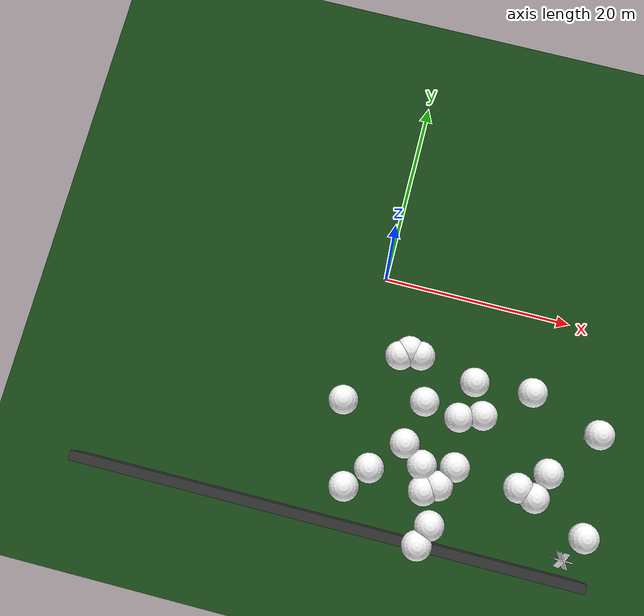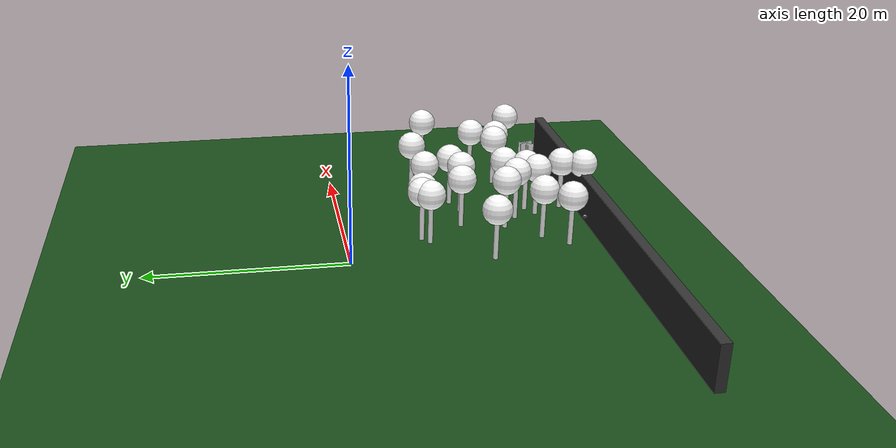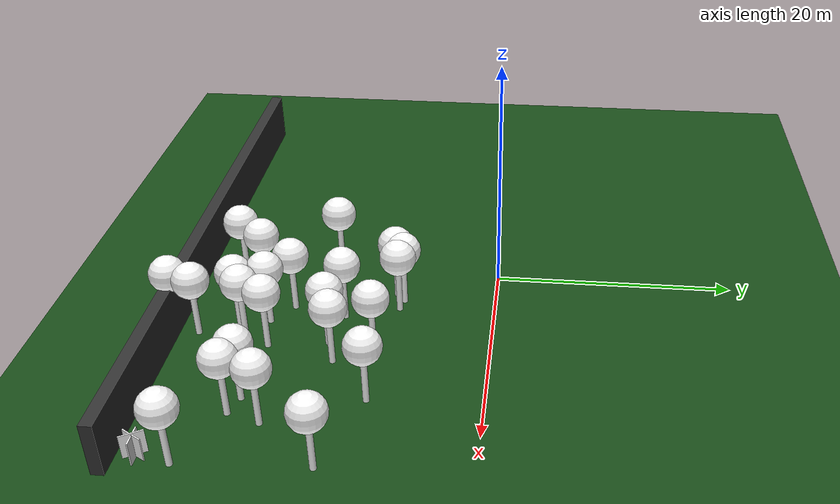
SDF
<sdf version="1.8">
 <world name="forest_world">
  <model name="fire_3">
   <pose>23.95 -23.95 1.00 0 0 0.00</pose>
   <static>true</static>
   <link name="fire_link">
    <visual name="fire_3_fire_main_0">
     <geometry><box><size>1.80 0.10 2.00</size></box></geometry>
     <material>
      <ambient>0.7 0.35 0.0 1</ambient>
      <diffuse>1 1 1 1</diffuse>
      <specular>0 0 0 1</specular>
      <emissive>0 0 0 1</emissive>
      <pbr>
       <metal><albedo_map>textures/fire.png</albedo_map><metalness>0.0</metalness><roughness>0.6</roughness></metal>
      </pbr>
     </material>
     <transparency>0.0</transparency>
     <cast_shadows>false</cast_shadows>
    </visual>
    <visual name="fire_3_fire_60_1">
     <pose>0.00 0.00 0.10 0 0 1.05</pose>
     <geometry><box><size>1.80 0.10 2.00</size></box></geometry>
     <material>
      <ambient>0.7 0.35 0.0 1</ambient>
      <diffuse>1 1 1 1</diffuse>
      <specular>0 0 0 1</specular>
      <emissive>0 0 0 1</emissive>
      <pbr>
       <metal><albedo_map>textures/fire.png</albedo_map><metalness>0.0</metalness><roughness>0.6</roughness></metal>
      </pbr>
     </material>
     <transparency>0.0</transparency>
     <cast_shadows>false</cast_shadows>
    </visual>
    <visual name="fire_3_fire_120_2">
     <pose>0.00 0.00 0.20 0 0 2.09</pose>
     <geometry><box><size>1.80 0.10 2.00</size></box></geometry>
     <material>
      <ambient>0.7 0.35 0.0 1</ambient>
      <diffuse>1 1 1 1</diffuse>
      <specular>0 0 0 1</specular>
      <emissive>0 0 0 1</emissive>
      <pbr>
       <metal><albedo_map>textures/fire.png</albedo_map><metalness>0.0</metalness><roughness>0.6</roughness></metal>
      </pbr>
     </material>
     <transparency>0.0</transparency>
     <cast_shadows>false</cast_shadows>
    </visual>
    <light type="point" name="fire_3_light_0">
     <pose>0.40 0.00 0.50 0 0 0</pose>
     <diffuse>1.0 0.7 0.3 1</diffuse>
     <specular>1.0 0.8 0.3 1</specular>
     <intensity>2</intensity>
     <attenuation>
      <range>2</range>
      <constant>0.1</constant>
      <linear>0.05</linear>
      <quadratic>0.02</quadratic>
     </attenuation>
     <cast_shadows>false</cast_shadows>
    </light>
    <light type="point" name="fire_3_light_1">
     <pose>-0.20 0.35 0.50 0 0 0</pose>
     <diffuse>1.0 0.7 0.3 1</diffuse>
     <specular>1.0 0.8 0.3 1</specular>
     <intensity>2</intensity>
     <attenuation>
      <range>2</range>
      <constant>0.1</constant>
      <linear>0.05</linear>
      <quadratic>0.02</quadratic>
     </attenuation>
     <cast_shadows>false</cast_shadows>
    </light>
    <light type="point" name="fire_3_light_2">
     <pose>-0.20 -0.35 0.50 0 0 0</pose>
     <diffuse>1.0 0.7 0.3 1</diffuse>
     <specular>1.0 0.8 0.3 1</specular>
     <intensity>2</intensity>
     <attenuation>
      <range>2</range>
      <constant>0.1</constant>
      <linear>0.05</linear>
      <quadratic>0.02</quadratic>
     </attenuation>
     <cast_shadows>false</cast_shadows>
    </light>
   </link>
   <plugin filename="libignition-gazebo-pose-publisher-system.so" name="ignition::gazebo::systems::PosePublisher">
    <frame_id>world</frame_id>
    <publish_link_pose>true</publish_link_pose>
    <use_pose_vector_msg>true</use_pose_vector_msg>
    <static_publisher>true</static_publisher>
    <static_update_frequency>1</static_update_frequency>
   </plugin>
  </model>
  <model name="tree_simple478">
   <static>1</static>
   <link name="link">
    <pose>0 0 0.1 0 -0 0</pose>
    <collision name="collision_trunk">
     <pose>0 0 2 0 -0 0</pose>
     <geometry><cylinder><radius>0.25</radius><length>4</length></cylinder></geometry>
    </collision>
    <collision name="collision_treetop">
     <pose>0 0 5.2 0 -0 0</pose>
     <geometry><sphere><radius>1.5</radius></sphere></geometry>
    </collision>
    <visual name="trunk">
     <pose>0 0 2 0 -0 0</pose>
     <geometry><cylinder><radius>0.25</radius><length>4</length></cylinder></geometry>
     <material>
      <ambient>0.5 0.5 0.5 1</ambient>
      <diffuse>1.0 1.0 1.0 1</diffuse>
      <specular>0.0 0.0 0.0 1</specular>
      <pbr>
       <metal>
        <albedo_map>../worlds/textures/tree_simple_trunk.jpg</albedo_map>
        <metalness>0.0</metalness>
        <roughness>0.8</roughness>
       </metal>
      </pbr>
     </material>
    </visual>
    <visual name="treetop">
     <pose>0 0 5.2 0 -0 0</pose>
     <geometry><sphere><radius>1.5</radius></sphere></geometry>
     <material>
      <ambient>0.5 0.5 0.5 1</ambient>
      <diffuse>1.0 1.0 1.0 1</diffuse>
      <specular>0.0 0.0 0.0 1</specular>
      <pbr>
       <metal>
        <albedo_map>../worlds/textures/tree_simple_treetop.jpg</albedo_map>
        <metalness>0.0</metalness>
        <roughness>0.9</roughness>
       </metal>
      </pbr>
     </material>
    </visual>
   </link>
   <pose>6.74093075138 -12.3162984353 0 0 -0 0</pose>
  </model>
  <model name="tree_simple472">
   <static>1</static>
   <link name="link">
    <pose>0 0 0.1 0 -0 0</pose>
    <collision name="collision_trunk">
     <pose>0 0 2 0 -0 0</pose>
     <geometry><cylinder><radius>0.25</radius><length>4</length></cylinder></geometry>
    </collision>
    <collision name="collision_treetop">
     <pose>0 0 5.2 0 -0 0</pose>
     <geometry><sphere><radius>1.5</radius></sphere></geometry>
    </collision>
    <visual name="trunk">
     <pose>0 0 2 0 -0 0</pose>
     <geometry><cylinder><radius>0.25</radius><length>4</length></cylinder></geometry>
     <material>
      <ambient>0.5 0.5 0.5 1</ambient>
      <diffuse>1.0 1.0 1.0 1</diffuse>
      <specular>0.0 0.0 0.0 1</specular>
      <pbr>
       <metal>
        <albedo_map>../worlds/textures/tree_simple_trunk.jpg</albedo_map>
        <metalness>0.0</metalness>
        <roughness>0.8</roughness>
       </metal>
      </pbr>
     </material>
    </visual>
    <visual name="treetop">
     <pose>0 0 5.2 0 -0 0</pose>
     <geometry><sphere><radius>1.5</radius></sphere></geometry>
     <material>
      <ambient>0.5 0.5 0.5 1</ambient>
      <diffuse>1.0 1.0 1.0 1</diffuse>
      <specular>0.0 0.0 0.0 1</specular>
      <pbr>
       <metal>
        <albedo_map>../worlds/textures/tree_simple_treetop.jpg</albedo_map>
        <metalness>0.0</metalness>
        <roughness>0.9</roughness>
       </metal>
      </pbr>
     </material>
    </visual>
   </link>
   <pose>9.92228677952 -23.8303447852 0 0 -0 0</pose>
  </model>
  <model name="tree_simple463">
   <static>1</static>
   <link name="link">
    <pose>0 0 0.1 0 -0 0</pose>
    <collision name="collision_trunk">
     <pose>0 0 2 0 -0 0</pose>
     <geometry><cylinder><radius>0.25</radius><length>4</length></cylinder></geometry>
    </collision>
    <collision name="collision_treetop">
     <pose>0 0 5.2 0 -0 0</pose>
     <geometry><sphere><radius>1.5</radius></sphere></geometry>
    </collision>
    <visual name="trunk">
     <pose>0 0 2 0 -0 0</pose>
     <geometry><cylinder><radius>0.25</radius><length>4</length></cylinder></geometry>
     <material>
      <ambient>0.5 0.5 0.5 1</ambient>
      <diffuse>1.0 1.0 1.0 1</diffuse>
      <specular>0.0 0.0 0.0 1</specular>
      <pbr>
       <metal>
        <albedo_map>../worlds/textures/tree_simple_trunk.jpg</albedo_map>
        <metalness>0.0</metalness>
        <roughness>0.8</roughness>
       </metal>
      </pbr>
     </material>
    </visual>
    <visual name="treetop">
     <pose>0 0 5.2 0 -0 0</pose>
     <geometry><sphere><radius>1.5</radius></sphere></geometry>
     <material>
      <ambient>0.5 0.5 0.5 1</ambient>
      <diffuse>1.0 1.0 1.0 1</diffuse>
      <specular>0.0 0.0 0.0 1</specular>
      <pbr>
       <metal>
        <albedo_map>../worlds/textures/tree_simple_treetop.jpg</albedo_map>
        <metalness>0.0</metalness>
        <roughness>0.9</roughness>
       </metal>
      </pbr>
     </material>
    </visual>
   </link>
   <pose>4.14452898467 -7.71733475474 0 0 -0 0</pose>
  </model>
  <model name="tree_simple439">
   <static>1</static>
   <link name="link">
    <pose>0 0 0.1 0 -0 0</pose>
    <collision name="collision_trunk">
     <pose>0 0 2 0 -0 0</pose>
     <geometry><cylinder><radius>0.25</radius><length>4</length></cylinder></geometry>
    </collision>
    <collision name="collision_treetop">
     <pose>0 0 5.2 0 -0 0</pose>
     <geometry><sphere><radius>1.5</radius></sphere></geometry>
    </collision>
    <visual name="trunk">
     <pose>0 0 2 0 -0 0</pose>
     <geometry><cylinder><radius>0.25</radius><length>4</length></cylinder></geometry>
     <material>
      <ambient>0.5 0.5 0.5 1</ambient>
      <diffuse>1.0 1.0 1.0 1</diffuse>
      <specular>0.0 0.0 0.0 1</specular>
      <pbr>
       <metal>
        <albedo_map>../worlds/textures/tree_simple_trunk.jpg</albedo_map>
        <metalness>0.0</metalness>
        <roughness>0.8</roughness>
       </metal>
      </pbr>
     </material>
    </visual>
    <visual name="treetop">
     <pose>0 0 5.2 0 -0 0</pose>
     <geometry><sphere><radius>1.5</radius></sphere></geometry>
     <material>
      <ambient>0.5 0.5 0.5 1</ambient>
      <diffuse>1.0 1.0 1.0 1</diffuse>
      <specular>0.0 0.0 0.0 1</specular>
      <pbr>
       <metal>
        <albedo_map>../worlds/textures/tree_simple_treetop.jpg</albedo_map>
        <metalness>0.0</metalness>
        <roughness>0.9</roughness>
       </metal>
      </pbr>
     </material>
    </visual>
   </link>
   <pose>8.56501316053 -20.7640585998 0 0 -0 0</pose>
  </model>
  <model name="tree_simple428">
   <static>1</static>
   <link name="link">
    <pose>0 0 0.1 0 -0 0</pose>
    <collision name="collision_trunk">
     <pose>0 0 2 0 -0 0</pose>
     <geometry><cylinder><radius>0.25</radius><length>4</length></cylinder></geometry>
    </collision>
    <collision name="collision_treetop">
     <pose>0 0 5.2 0 -0 0</pose>
     <geometry><sphere><radius>1.5</radius></sphere></geometry>
    </collision>
    <visual name="trunk">
     <pose>0 0 2 0 -0 0</pose>
     <geometry><cylinder><radius>0.25</radius><length>4</length></cylinder></geometry>
     <material>
      <ambient>0.5 0.5 0.5 1</ambient>
      <diffuse>1.0 1.0 1.0 1</diffuse>
      <specular>0.0 0.0 0.0 1</specular>
      <pbr>
       <metal>
        <albedo_map>../worlds/textures/tree_simple_trunk.jpg</albedo_map>
        <metalness>0.0</metalness>
        <roughness>0.8</roughness>
       </metal>
      </pbr>
     </material>
    </visual>
    <visual name="treetop">
     <pose>0 0 5.2 0 -0 0</pose>
     <geometry><sphere><radius>1.5</radius></sphere></geometry>
     <material>
      <ambient>0.5 0.5 0.5 1</ambient>
      <diffuse>1.0 1.0 1.0 1</diffuse>
      <specular>0.0 0.0 0.0 1</specular>
      <pbr>
       <metal>
        <albedo_map>../worlds/textures/tree_simple_treetop.jpg</albedo_map>
        <metalness>0.0</metalness>
        <roughness>0.9</roughness>
       </metal>
      </pbr>
     </material>
    </visual>
   </link>
   <pose>9.87663766252 -19.9509422297 0 0 -0 0</pose>
  </model>
  <model name="tree_simple389">
   <static>1</static>
   <link name="link">
    <pose>0 0 0.1 0 -0 0</pose>
    <collision name="collision_trunk">
     <pose>0 0 2 0 -0 0</pose>
     <geometry><cylinder><radius>0.25</radius><length>4</length></cylinder></geometry>
    </collision>
    <collision name="collision_treetop">
     <pose>0 0 5.2 0 -0 0</pose>
     <geometry><sphere><radius>1.5</radius></sphere></geometry>
    </collision>
    <visual name="trunk">
     <pose>0 0 2 0 -0 0</pose>
     <geometry><cylinder><radius>0.25</radius><length>4</length></cylinder></geometry>
     <material>
      <ambient>0.5 0.5 0.5 1</ambient>
      <diffuse>1.0 1.0 1.0 1</diffuse>
      <specular>0.0 0.0 0.0 1</specular>
      <pbr>
       <metal>
        <albedo_map>../worlds/textures/tree_simple_trunk.jpg</albedo_map>
        <metalness>0.0</metalness>
        <roughness>0.8</roughness>
       </metal>
      </pbr>
     </material>
    </visual>
    <visual name="treetop">
     <pose>0 0 5.2 0 -0 0</pose>
     <geometry><sphere><radius>1.5</radius></sphere></geometry>
     <material>
      <ambient>0.5 0.5 0.5 1</ambient>
      <diffuse>1.0 1.0 1.0 1</diffuse>
      <specular>0.0 0.0 0.0 1</specular>
      <pbr>
       <metal>
        <albedo_map>../worlds/textures/tree_simple_treetop.jpg</albedo_map>
        <metalness>0.0</metalness>
        <roughness>0.9</roughness>
       </metal>
      </pbr>
     </material>
    </visual>
   </link>
   <pose>12.5934036343 -12.2598342596 0 0 -0 0</pose>
  </model>
  <model name="tree_simple327">
   <static>1</static>
   <link name="link">
    <pose>0 0 0.1 0 -0 0</pose>
    <collision name="collision_trunk">
     <pose>0 0 2 0 -0 0</pose>
     <geometry><cylinder><radius>0.25</radius><length>4</length></cylinder></geometry>
    </collision>
    <collision name="collision_treetop">
     <pose>0 0 5.2 0 -0 0</pose>
     <geometry><sphere><radius>1.5</radius></sphere></geometry>
    </collision>
    <visual name="trunk">
     <pose>0 0 2 0 -0 0</pose>
     <geometry><cylinder><radius>0.25</radius><length>4</length></cylinder></geometry>
     <material>
      <ambient>0.5 0.5 0.5 1</ambient>
      <diffuse>1.0 1.0 1.0 1</diffuse>
      <specular>0.0 0.0 0.0 1</specular>
      <pbr>
       <metal>
        <albedo_map>../worlds/textures/tree_simple_trunk.jpg</albedo_map>
        <metalness>0.0</metalness>
        <roughness>0.8</roughness>
       </metal>
      </pbr>
     </material>
    </visual>
    <visual name="treetop">
     <pose>0 0 5.2 0 -0 0</pose>
     <geometry><sphere><radius>1.5</radius></sphere></geometry>
     <material>
      <ambient>0.5 0.5 0.5 1</ambient>
      <diffuse>1.0 1.0 1.0 1</diffuse>
      <specular>0.0 0.0 0.0 1</specular>
      <pbr>
       <metal>
        <albedo_map>../worlds/textures/tree_simple_treetop.jpg</albedo_map>
        <metalness>0.0</metalness>
        <roughness>0.9</roughness>
       </metal>
      </pbr>
     </material>
    </visual>
   </link>
   <pose>5.78438571624 -16.7663148306 0 0 -0 0</pose>
  </model>
  <model name="tree_simple317">
   <static>1</static>
   <link name="link">
    <pose>0 0 0.1 0 -0 0</pose>
    <collision name="collision_trunk">
     <pose>0 0 2 0 -0 0</pose>
     <geometry><cylinder><radius>0.25</radius><length>4</length></cylinder></geometry>
    </collision>
    <collision name="collision_treetop">
     <pose>0 0 5.2 0 -0 0</pose>
     <geometry><sphere><radius>1.5</radius></sphere></geometry>
    </collision>
    <visual name="trunk">
     <pose>0 0 2 0 -0 0</pose>
     <geometry><cylinder><radius>0.25</radius><length>4</length></cylinder></geometry>
     <material>
      <ambient>0.5 0.5 0.5 1</ambient>
      <diffuse>1.0 1.0 1.0 1</diffuse>
      <specular>0.0 0.0 0.0 1</specular>
      <pbr>
       <metal>
        <albedo_map>../worlds/textures/tree_simple_trunk.jpg</albedo_map>
        <metalness>0.0</metalness>
        <roughness>0.8</roughness>
       </metal>
      </pbr>
     </material>
    </visual>
    <visual name="treetop">
     <pose>0 0 5.2 0 -0 0</pose>
     <geometry><sphere><radius>1.5</radius></sphere></geometry>
     <material>
      <ambient>0.5 0.5 0.5 1</ambient>
      <diffuse>1.0 1.0 1.0 1</diffuse>
      <specular>0.0 0.0 0.0 1</specular>
      <pbr>
       <metal>
        <albedo_map>../worlds/textures/tree_simple_treetop.jpg</albedo_map>
        <metalness>0.0</metalness>
        <roughness>0.9</roughness>
       </metal>
      </pbr>
     </material>
    </visual>
   </link>
   <pose>1.01183279708 -22.2370296953 0 0 -0 0</pose>
  </model>
  <model name="tree_simple309">
   <static>1</static>
   <link name="link">
    <pose>0 0 0.1 0 -0 0</pose>
    <collision name="collision_trunk">
     <pose>0 0 2 0 -0 0</pose>
     <geometry><cylinder><radius>0.25</radius><length>4</length></cylinder></geometry>
    </collision>
    <collision name="collision_treetop">
     <pose>0 0 5.2 0 -0 0</pose>
     <geometry><sphere><radius>1.5</radius></sphere></geometry>
    </collision>
    <visual name="trunk">
     <pose>0 0 2 0 -0 0</pose>
     <geometry><cylinder><radius>0.25</radius><length>4</length></cylinder></geometry>
     <material>
      <ambient>0.5 0.5 0.5 1</ambient>
      <diffuse>1.0 1.0 1.0 1</diffuse>
      <specular>0.0 0.0 0.0 1</specular>
      <pbr>
       <metal>
        <albedo_map>../worlds/textures/tree_simple_trunk.jpg</albedo_map>
        <metalness>0.0</metalness>
        <roughness>0.8</roughness>
       </metal>
      </pbr>
     </material>
    </visual>
    <visual name="treetop">
     <pose>0 0 5.2 0 -0 0</pose>
     <geometry><sphere><radius>1.5</radius></sphere></geometry>
     <material>
      <ambient>0.5 0.5 0.5 1</ambient>
      <diffuse>1.0 1.0 1.0 1</diffuse>
      <specular>0.0 0.0 0.0 1</specular>
      <pbr>
       <metal>
        <albedo_map>../worlds/textures/tree_simple_treetop.jpg</albedo_map>
        <metalness>0.0</metalness>
        <roughness>0.9</roughness>
       </metal>
      </pbr>
     </material>
    </visual>
   </link>
   <pose>19.1748935323 -18.8000539767 0 0 -0 0</pose>
  </model>
  <model name="tree_simple292">
   <static>1</static>
   <link name="link">
    <pose>0 0 0.1 0 -0 0</pose>
    <collision name="collision_trunk">
     <pose>0 0 2 0 -0 0</pose>
     <geometry><cylinder><radius>0.25</radius><length>4</length></cylinder></geometry>
    </collision>
    <collision name="collision_treetop">
     <pose>0 0 5.2 0 -0 0</pose>
     <geometry><sphere><radius>1.5</radius></sphere></geometry>
    </collision>
    <visual name="trunk">
     <pose>0 0 2 0 -0 0</pose>
     <geometry><cylinder><radius>0.25</radius><length>4</length></cylinder></geometry>
     <material>
      <ambient>0.5 0.5 0.5 1</ambient>
      <diffuse>1.0 1.0 1.0 1</diffuse>
      <specular>0.0 0.0 0.0 1</specular>
      <pbr>
       <metal>
        <albedo_map>../worlds/textures/tree_simple_trunk.jpg</albedo_map>
        <metalness>0.0</metalness>
        <roughness>0.8</roughness>
       </metal>
      </pbr>
     </material>
    </visual>
    <visual name="treetop">
     <pose>0 0 5.2 0 -0 0</pose>
     <geometry><sphere><radius>1.5</radius></sphere></geometry>
     <material>
      <ambient>0.5 0.5 0.5 1</ambient>
      <diffuse>1.0 1.0 1.0 1</diffuse>
      <specular>0.0 0.0 0.0 1</specular>
      <pbr>
       <metal>
        <albedo_map>../worlds/textures/tree_simple_treetop.jpg</albedo_map>
        <metalness>0.0</metalness>
        <roughness>0.9</roughness>
       </metal>
      </pbr>
     </material>
    </visual>
   </link>
   <pose>16.8917664362 -8.8290409333 0 0 -0 0</pose>
  </model>
  <model name="tree_simple211">
   <static>1</static>
   <link name="link">
    <pose>0 0 0.1 0 -0 0</pose>
    <collision name="collision_trunk">
     <pose>0 0 2 0 -0 0</pose>
     <geometry><cylinder><radius>0.25</radius><length>4</length></cylinder></geometry>
    </collision>
    <collision name="collision_treetop">
     <pose>0 0 5.2 0 -0 0</pose>
     <geometry><sphere><radius>1.5</radius></sphere></geometry>
    </collision>
    <visual name="trunk">
     <pose>0 0 2 0 -0 0</pose>
     <geometry><cylinder><radius>0.25</radius><length>4</length></cylinder></geometry>
     <material>
      <ambient>0.5 0.5 0.5 1</ambient>
      <diffuse>1.0 1.0 1.0 1</diffuse>
      <specular>0.0 0.0 0.0 1</specular>
      <pbr>
       <metal>
        <albedo_map>../worlds/textures/tree_simple_trunk.jpg</albedo_map>
        <metalness>0.0</metalness>
        <roughness>0.8</roughness>
       </metal>
      </pbr>
     </material>
    </visual>
    <visual name="treetop">
     <pose>0 0 5.2 0 -0 0</pose>
     <geometry><sphere><radius>1.5</radius></sphere></geometry>
     <material>
      <ambient>0.5 0.5 0.5 1</ambient>
      <diffuse>1.0 1.0 1.0 1</diffuse>
      <specular>0.0 0.0 0.0 1</specular>
      <pbr>
       <metal>
        <albedo_map>../worlds/textures/tree_simple_treetop.jpg</albedo_map>
        <metalness>0.0</metalness>
        <roughness>0.9</roughness>
       </metal>
      </pbr>
     </material>
    </visual>
   </link>
   <pose>24.1088627432 -11.2741546154 0 0 -0 0</pose>
  </model>
  <model name="tree_simple195">
   <static>1</static>
   <link name="link">
    <pose>0 0 0.1 0 -0 0</pose>
    <collision name="collision_trunk">
     <pose>0 0 2 0 -0 0</pose>
     <geometry><cylinder><radius>0.25</radius><length>4</length></cylinder></geometry>
    </collision>
    <collision name="collision_treetop">
     <pose>0 0 5.2 0 -0 0</pose>
     <geometry><sphere><radius>1.5</radius></sphere></geometry>
    </collision>
    <visual name="trunk">
     <pose>0 0 2 0 -0 0</pose>
     <geometry><cylinder><radius>0.25</radius><length>4</length></cylinder></geometry>
     <material>
      <ambient>0.5 0.5 0.5 1</ambient>
      <diffuse>1.0 1.0 1.0 1</diffuse>
      <specular>0.0 0.0 0.0 1</specular>
      <pbr>
       <metal>
        <albedo_map>../worlds/textures/tree_simple_trunk.jpg</albedo_map>
        <metalness>0.0</metalness>
        <roughness>0.8</roughness>
       </metal>
      </pbr>
     </material>
    </visual>
    <visual name="treetop">
     <pose>0 0 5.2 0 -0 0</pose>
     <geometry><sphere><radius>1.5</radius></sphere></geometry>
     <material>
      <ambient>0.5 0.5 0.5 1</ambient>
      <diffuse>1.0 1.0 1.0 1</diffuse>
      <specular>0.0 0.0 0.0 1</specular>
      <pbr>
       <metal>
        <albedo_map>../worlds/textures/tree_simple_treetop.jpg</albedo_map>
        <metalness>0.0</metalness>
        <roughness>0.9</roughness>
       </metal>
      </pbr>
     </material>
    </visual>
   </link>
   <pose>2.97634626893 -19.931363898 0 0 -0 0</pose>
  </model>
  <model name="tree_simple191">
   <static>1</static>
   <link name="link">
    <pose>0 0 0.1 0 -0 0</pose>
    <collision name="collision_trunk">
     <pose>0 0 2 0 -0 0</pose>
     <geometry><cylinder><radius>0.25</radius><length>4</length></cylinder></geometry>
    </collision>
    <collision name="collision_treetop">
     <pose>0 0 5.2 0 -0 0</pose>
     <geometry><sphere><radius>1.5</radius></sphere></geometry>
    </collision>
    <visual name="trunk">
     <pose>0 0 2 0 -0 0</pose>
     <geometry><cylinder><radius>0.25</radius><length>4</length></cylinder></geometry>
     <material>
      <ambient>0.5 0.5 0.5 1</ambient>
      <diffuse>1.0 1.0 1.0 1</diffuse>
      <specular>0.0 0.0 0.0 1</specular>
      <pbr>
       <metal>
        <albedo_map>../worlds/textures/tree_simple_trunk.jpg</albedo_map>
        <metalness>0.0</metalness>
        <roughness>0.8</roughness>
       </metal>
      </pbr>
     </material>
    </visual>
    <visual name="treetop">
     <pose>0 0 5.2 0 -0 0</pose>
     <geometry><sphere><radius>1.5</radius></sphere></geometry>
     <material>
      <ambient>0.5 0.5 0.5 1</ambient>
      <diffuse>1.0 1.0 1.0 1</diffuse>
      <specular>0.0 0.0 0.0 1</specular>
      <pbr>
       <metal>
        <albedo_map>../worlds/textures/tree_simple_treetop.jpg</albedo_map>
        <metalness>0.0</metalness>
        <roughness>0.9</roughness>
       </metal>
      </pbr>
     </material>
    </visual>
   </link>
   <pose>7.88783183775 -18.3803184039 0 0 -0 0</pose>
  </model>
  <model name="tree_simple157">
   <static>1</static>
   <link name="link">
    <pose>0 0 0.1 0 -0 0</pose>
    <collision name="collision_trunk">
     <pose>0 0 2 0 -0 0</pose>
     <geometry><cylinder><radius>0.25</radius><length>4</length></cylinder></geometry>
    </collision>
    <collision name="collision_treetop">
     <pose>0 0 5.2 0 -0 0</pose>
     <geometry><sphere><radius>1.5</radius></sphere></geometry>
    </collision>
    <visual name="trunk">
     <pose>0 0 2 0 -0 0</pose>
     <geometry><cylinder><radius>0.25</radius><length>4</length></cylinder></geometry>
     <material>
      <ambient>0.5 0.5 0.5 1</ambient>
      <diffuse>1.0 1.0 1.0 1</diffuse>
      <specular>0.0 0.0 0.0 1</specular>
      <pbr>
       <metal>
        <albedo_map>../worlds/textures/tree_simple_trunk.jpg</albedo_map>
        <metalness>0.0</metalness>
        <roughness>0.8</roughness>
       </metal>
      </pbr>
     </material>
    </visual>
    <visual name="treetop">
     <pose>0 0 5.2 0 -0 0</pose>
     <geometry><sphere><radius>1.5</radius></sphere></geometry>
     <material>
      <ambient>0.5 0.5 0.5 1</ambient>
      <diffuse>1.0 1.0 1.0 1</diffuse>
      <specular>0.0 0.0 0.0 1</specular>
      <pbr>
       <metal>
        <albedo_map>../worlds/textures/tree_simple_treetop.jpg</albedo_map>
        <metalness>0.0</metalness>
        <roughness>0.9</roughness>
       </metal>
      </pbr>
     </material>
    </visual>
   </link>
   <pose>17.4643259264 -18.2232751505 0 0 -0 0</pose>
  </model>
  <model name="tree_simple156">
   <static>1</static>
   <link name="link">
    <pose>0 0 0.1 0 -0 0</pose>
    <collision name="collision_trunk">
     <pose>0 0 2 0 -0 0</pose>
     <geometry><cylinder><radius>0.25</radius><length>4</length></cylinder></geometry>
    </collision>
    <collision name="collision_treetop">
     <pose>0 0 5.2 0 -0 0</pose>
     <geometry><sphere><radius>1.5</radius></sphere></geometry>
    </collision>
    <visual name="trunk">
     <pose>0 0 2 0 -0 0</pose>
     <geometry><cylinder><radius>0.25</radius><length>4</length></cylinder></geometry>
     <material>
      <ambient>0.5 0.5 0.5 1</ambient>
      <diffuse>1.0 1.0 1.0 1</diffuse>
      <specular>0.0 0.0 0.0 1</specular>
      <pbr>
       <metal>
        <albedo_map>../worlds/textures/tree_simple_trunk.jpg</albedo_map>
        <metalness>0.0</metalness>
        <roughness>0.8</roughness>
       </metal>
      </pbr>
     </material>
    </visual>
    <visual name="treetop">
     <pose>0 0 5.2 0 -0 0</pose>
     <geometry><sphere><radius>1.5</radius></sphere></geometry>
     <material>
      <ambient>0.5 0.5 0.5 1</ambient>
      <diffuse>1.0 1.0 1.0 1</diffuse>
      <specular>0.0 0.0 0.0 1</specular>
      <pbr>
       <metal>
        <albedo_map>../worlds/textures/tree_simple_treetop.jpg</albedo_map>
        <metalness>0.0</metalness>
        <roughness>0.9</roughness>
       </metal>
      </pbr>
     </material>
    </visual>
   </link>
   <pose>20.0356149828 -16.1600287231 0 0 -0 0</pose>
  </model>
  <model name="tree_simple154">
   <static>1</static>
   <link name="link">
    <pose>0 0 0.1 0 -0 0</pose>
    <collision name="collision_trunk">
     <pose>0 0 2 0 -0 0</pose>
     <geometry><cylinder><radius>0.25</radius><length>4</length></cylinder></geometry>
    </collision>
    <collision name="collision_treetop">
     <pose>0 0 5.2 0 -0 0</pose>
     <geometry><sphere><radius>1.5</radius></sphere></geometry>
    </collision>
    <visual name="trunk">
     <pose>0 0 2 0 -0 0</pose>
     <geometry><cylinder><radius>0.25</radius><length>4</length></cylinder></geometry>
     <material>
      <ambient>0.5 0.5 0.5 1</ambient>
      <diffuse>1.0 1.0 1.0 1</diffuse>
      <specular>0.0 0.0 0.0 1</specular>
      <pbr>
       <metal>
        <albedo_map>../worlds/textures/tree_simple_trunk.jpg</albedo_map>
        <metalness>0.0</metalness>
        <roughness>0.8</roughness>
       </metal>
      </pbr>
     </material>
    </visual>
    <visual name="treetop">
     <pose>0 0 5.2 0 -0 0</pose>
     <geometry><sphere><radius>1.5</radius></sphere></geometry>
     <material>
      <ambient>0.5 0.5 0.5 1</ambient>
      <diffuse>1.0 1.0 1.0 1</diffuse>
      <specular>0.0 0.0 0.0 1</specular>
      <pbr>
       <metal>
        <albedo_map>../worlds/textures/tree_simple_treetop.jpg</albedo_map>
        <metalness>0.0</metalness>
        <roughness>0.9</roughness>
       </metal>
      </pbr>
     </material>
    </visual>
   </link>
   <pose>3.295584565 -8.44091810905 0 0 -0 0</pose>
  </model>
  <model name="tree_simple140">
   <static>1</static>
   <link name="link">
    <pose>0 0 0.1 0 -0 0</pose>
    <collision name="collision_trunk">
     <pose>0 0 2 0 -0 0</pose>
     <geometry><cylinder><radius>0.25</radius><length>4</length></cylinder></geometry>
    </collision>
    <collision name="collision_treetop">
     <pose>0 0 5.2 0 -0 0</pose>
     <geometry><sphere><radius>1.5</radius></sphere></geometry>
    </collision>
    <visual name="trunk">
     <pose>0 0 2 0 -0 0</pose>
     <geometry><cylinder><radius>0.25</radius><length>4</length></cylinder></geometry>
     <material>
      <ambient>0.5 0.5 0.5 1</ambient>
      <diffuse>1.0 1.0 1.0 1</diffuse>
      <specular>0.0 0.0 0.0 1</specular>
      <pbr>
       <metal>
        <albedo_map>../worlds/textures/tree_simple_trunk.jpg</albedo_map>
        <metalness>0.0</metalness>
        <roughness>0.8</roughness>
       </metal>
      </pbr>
     </material>
    </visual>
    <visual name="treetop">
     <pose>0 0 5.2 0 -0 0</pose>
     <geometry><sphere><radius>1.5</radius></sphere></geometry>
     <material>
      <ambient>0.5 0.5 0.5 1</ambient>
      <diffuse>1.0 1.0 1.0 1</diffuse>
      <specular>0.0 0.0 0.0 1</specular>
      <pbr>
       <metal>
        <albedo_map>../worlds/textures/tree_simple_treetop.jpg</albedo_map>
        <metalness>0.0</metalness>
        <roughness>0.9</roughness>
       </metal>
      </pbr>
     </material>
    </visual>
   </link>
   <pose>-1.08104360216 -14.0922455385 0 0 -0 0</pose>
  </model>
  <model name="tree_simple124">
   <static>1</static>
   <link name="link">
    <pose>0 0 0.1 0 -0 0</pose>
    <collision name="collision_trunk">
     <pose>0 0 2 0 -0 0</pose>
     <geometry><cylinder><radius>0.25</radius><length>4</length></cylinder></geometry>
    </collision>
    <collision name="collision_treetop">
     <pose>0 0 5.2 0 -0 0</pose>
     <geometry><sphere><radius>1.5</radius></sphere></geometry>
    </collision>
    <visual name="trunk">
     <pose>0 0 2 0 -0 0</pose>
     <geometry><cylinder><radius>0.25</radius><length>4</length></cylinder></geometry>
     <material>
      <ambient>0.5 0.5 0.5 1</ambient>
      <diffuse>1.0 1.0 1.0 1</diffuse>
      <specular>0.0 0.0 0.0 1</specular>
      <pbr>
       <metal>
        <albedo_map>../worlds/textures/tree_simple_trunk.jpg</albedo_map>
        <metalness>0.0</metalness>
        <roughness>0.8</roughness>
       </metal>
      </pbr>
     </material>
    </visual>
    <visual name="treetop">
     <pose>0 0 5.2 0 -0 0</pose>
     <geometry><sphere><radius>1.5</radius></sphere></geometry>
     <material>
      <ambient>0.5 0.5 0.5 1</ambient>
      <diffuse>1.0 1.0 1.0 1</diffuse>
      <specular>0.0 0.0 0.0 1</specular>
      <pbr>
       <metal>
        <albedo_map>../worlds/textures/tree_simple_treetop.jpg</albedo_map>
        <metalness>0.0</metalness>
        <roughness>0.9</roughness>
       </metal>
      </pbr>
     </material>
    </visual>
   </link>
   <pose>5.29940018808 -7.97080739541 0 0 -0 0</pose>
  </model>
  <model name="tree_simple80">
   <static>1</static>
   <link name="link">
    <pose>0 0 0.1 0 -0 0</pose>
    <collision name="collision_trunk">
     <pose>0 0 2 0 -0 0</pose>
     <geometry><cylinder><radius>0.25</radius><length>4</length></cylinder></geometry>
    </collision>
    <collision name="collision_treetop">
     <pose>0 0 5.2 0 -0 0</pose>
     <geometry><sphere><radius>1.5</radius></sphere></geometry>
    </collision>
    <visual name="trunk">
     <pose>0 0 2 0 -0 0</pose>
     <geometry><cylinder><radius>0.25</radius><length>4</length></cylinder></geometry>
     <material>
      <ambient>0.5 0.5 0.5 1</ambient>
      <diffuse>1.0 1.0 1.0 1</diffuse>
      <specular>0.0 0.0 0.0 1</specular>
      <pbr>
       <metal>
        <albedo_map>../worlds/textures/tree_simple_trunk.jpg</albedo_map>
        <metalness>0.0</metalness>
        <roughness>0.8</roughness>
       </metal>
      </pbr>
     </material>
    </visual>
    <visual name="treetop">
     <pose>0 0 5.2 0 -0 0</pose>
     <geometry><sphere><radius>1.5</radius></sphere></geometry>
     <material>
      <ambient>0.5 0.5 0.5 1</ambient>
      <diffuse>1.0 1.0 1.0 1</diffuse>
      <specular>0.0 0.0 0.0 1</specular>
      <pbr>
       <metal>
        <albedo_map>../worlds/textures/tree_simple_treetop.jpg</albedo_map>
        <metalness>0.0</metalness>
        <roughness>0.9</roughness>
       </metal>
      </pbr>
     </material>
    </visual>
   </link>
   <pose>11.0693190469 -17.8172800913 0 0 -0 0</pose>
  </model>
  <model name="tree_simple61">
   <static>1</static>
   <link name="link">
    <pose>0 0 0.1 0 -0 0</pose>
    <collision name="collision_trunk">
     <pose>0 0 2 0 -0 0</pose>
     <geometry><cylinder><radius>0.25</radius><length>4</length></cylinder></geometry>
    </collision>
    <collision name="collision_treetop">
     <pose>0 0 5.2 0 -0 0</pose>
     <geometry><sphere><radius>1.5</radius></sphere></geometry>
    </collision>
    <visual name="trunk">
     <pose>0 0 2 0 -0 0</pose>
     <geometry><cylinder><radius>0.25</radius><length>4</length></cylinder></geometry>
     <material>
      <ambient>0.5 0.5 0.5 1</ambient>
      <diffuse>1.0 1.0 1.0 1</diffuse>
      <specular>0.0 0.0 0.0 1</specular>
      <pbr>
       <metal>
        <albedo_map>../worlds/textures/tree_simple_trunk.jpg</albedo_map>
        <metalness>0.0</metalness>
        <roughness>0.8</roughness>
       </metal>
      </pbr>
     </material>
    </visual>
    <visual name="treetop">
     <pose>0 0 5.2 0 -0 0</pose>
     <geometry><sphere><radius>1.5</radius></sphere></geometry>
     <material>
      <ambient>0.5 0.5 0.5 1</ambient>
      <diffuse>1.0 1.0 1.0 1</diffuse>
      <specular>0.0 0.0 0.0 1</specular>
      <pbr>
       <metal>
        <albedo_map>../worlds/textures/tree_simple_treetop.jpg</albedo_map>
        <metalness>0.0</metalness>
        <roughness>0.9</roughness>
       </metal>
      </pbr>
     </material>
    </visual>
   </link>
   <pose>11.1083893096 -9.22601092506 0 0 -0 0</pose>
  </model>
  <model name="tree_simple40">
   <static>1</static>
   <link name="link">
    <pose>0 0 0.1 0 -0 0</pose>
    <collision name="collision_trunk">
     <pose>0 0 2 0 -0 0</pose>
     <geometry><cylinder><radius>0.25</radius><length>4</length></cylinder></geometry>
    </collision>
    <collision name="collision_treetop">
     <pose>0 0 5.2 0 -0 0</pose>
     <geometry><sphere><radius>1.5</radius></sphere></geometry>
    </collision>
    <visual name="trunk">
     <pose>0 0 2 0 -0 0</pose>
     <geometry><cylinder><radius>0.25</radius><length>4</length></cylinder></geometry>
     <material>
      <ambient>0.5 0.5 0.5 1</ambient>
      <diffuse>1.0 1.0 1.0 1</diffuse>
      <specular>0.0 0.0 0.0 1</specular>
      <pbr>
       <metal>
        <albedo_map>../worlds/textures/tree_simple_trunk.jpg</albedo_map>
        <metalness>0.0</metalness>
        <roughness>0.8</roughness>
       </metal>
      </pbr>
     </material>
    </visual>
    <visual name="treetop">
     <pose>0 0 5.2 0 -0 0</pose>
     <geometry><sphere><radius>1.5</radius></sphere></geometry>
     <material>
      <ambient>0.5 0.5 0.5 1</ambient>
      <diffuse>1.0 1.0 1.0 1</diffuse>
      <specular>0.0 0.0 0.0 1</specular>
      <pbr>
       <metal>
        <albedo_map>../worlds/textures/tree_simple_treetop.jpg</albedo_map>
        <metalness>0.0</metalness>
        <roughness>0.9</roughness>
       </metal>
      </pbr>
     </material>
    </visual>
   </link>
   <pose>10.3610745353 -13.0055256356 0 0 -0 0</pose>
  </model>
  <model name="tree_simple38">
   <static>1</static>
   <link name="link">
    <pose>0 0 0.1 0 -0 0</pose>
    <collision name="collision_trunk">
     <pose>0 0 2 0 -0 0</pose>
     <geometry><cylinder><radius>0.25</radius><length>4</length></cylinder></geometry>
    </collision>
    <collision name="collision_treetop">
     <pose>0 0 5.2 0 -0 0</pose>
     <geometry><sphere><radius>1.5</radius></sphere></geometry>
    </collision>
    <visual name="trunk">
     <pose>0 0 2 0 -0 0</pose>
     <geometry><cylinder><radius>0.25</radius><length>4</length></cylinder></geometry>
     <material>
      <ambient>0.5 0.5 0.5 1</ambient>
      <diffuse>1.0 1.0 1.0 1</diffuse>
      <specular>0.0 0.0 0.0 1</specular>
      <pbr>
       <metal>
        <albedo_map>../worlds/textures/tree_simple_trunk.jpg</albedo_map>
        <metalness>0.0</metalness>
        <roughness>0.8</roughness>
       </metal>
      </pbr>
     </material>
    </visual>
    <visual name="treetop">
     <pose>0 0 5.2 0 -0 0</pose>
     <geometry><sphere><radius>1.5</radius></sphere></geometry>
     <material>
      <ambient>0.5 0.5 0.5 1</ambient>
      <diffuse>1.0 1.0 1.0 1</diffuse>
      <specular>0.0 0.0 0.0 1</specular>
      <pbr>
       <metal>
        <albedo_map>../worlds/textures/tree_simple_treetop.jpg</albedo_map>
        <metalness>0.0</metalness>
        <roughness>0.9</roughness>
       </metal>
      </pbr>
     </material>
    </visual>
   </link>
   <pose>9.1535103592 -25.9369722849 0 0 -0 0</pose>
  </model>
  <model name="tree_simple3">
   <static>1</static>
   <link name="link">
    <pose>0 0 0.1 0 -0 0</pose>
    <collision name="collision_trunk">
     <pose>0 0 2 0 -0 0</pose>
     <geometry><cylinder><radius>0.25</radius><length>4</length></cylinder></geometry>
    </collision>
    <collision name="collision_treetop">
     <pose>0 0 5.2 0 -0 0</pose>
     <geometry><sphere><radius>1.5</radius></sphere></geometry>
    </collision>
    <visual name="trunk">
     <pose>0 0 2 0 -0 0</pose>
     <geometry><cylinder><radius>0.25</radius><length>4</length></cylinder></geometry>
     <material>
      <ambient>0.5 0.5 0.5 1</ambient>
      <diffuse>1.0 1.0 1.0 1</diffuse>
      <specular>0.0 0.0 0.0 1</specular>
      <pbr>
       <metal>
        <albedo_map>../worlds/textures/tree_simple_trunk.jpg</albedo_map>
        <metalness>0.0</metalness>
        <roughness>0.8</roughness>
       </metal>
      </pbr>
     </material>
    </visual>
    <visual name="treetop">
     <pose>0 0 5.2 0 -0 0</pose>
     <geometry><sphere><radius>1.5</radius></sphere></geometry>
     <material>
      <ambient>0.5 0.5 0.5 1</ambient>
      <diffuse>1.0 1.0 1.0 1</diffuse>
      <specular>0.0 0.0 0.0 1</specular>
      <pbr>
       <metal>
        <albedo_map>../worlds/textures/tree_simple_treetop.jpg</albedo_map>
        <metalness>0.0</metalness>
        <roughness>0.9</roughness>
       </metal>
      </pbr>
     </material>
    </visual>
   </link>
   <pose>24.571631205 -21.3215863424 0 0 -0 0</pose>
  </model>
  <model name="ground_plane">
   <static>true</static>
   <link name="link">
    <collision name="collision">
     <geometry><mesh><uri>../worlds/textures/grass_plane.dae</uri><scale>1 1 1</scale></mesh></geometry>
     <surface><friction><ode><mu>1</mu><mu2>1</mu2></ode></friction></surface>
    </collision>
    <visual name="snow">
     <cast_shadows>false</cast_shadows>
     <geometry><mesh><uri>../worlds/textures/grass_plane.dae</uri><scale>1 1 1</scale></mesh></geometry>
     <material>
      <ambient>0.05 0.2 0.05 1</ambient>
      <diffuse>0.1 0.3 0.1 1</diffuse>
      <specular>0.05 0.05 0.05 1</specular>
     </material>
    </visual>
   </link>
  </model>
  <model name="wall_south">
   <static>true</static>
   <pose>0 -25.95 2 0 0 0</pose>
   <link name="link">
    <collision name="collision"><geometry><box><size>51.85 1 5</size></box></geometry></collision>
    <visual name="visual">
     <geometry><box><size>51.85 1 5</size></box></geometry>
     <material><ambient>0.2 0.2 0.2 1</ambient><diffuse>0.2 0.2 0.2 1</diffuse></material>
    </visual>
   </link>
  </model>
  <model name="turtlebot4">
   <pose>0 -23.25 3.5 0 0 1.5708</pose>
   <static>false</static>
   <link name="base_link">
    <inertial>
     <mass>2.5</mass>
     <inertia>
      <ixx>0.019995</ixx>
      <ixy>0.0</ixy>
      <ixz>0.0</ixz>
      <iyy>0.019995</iyy>
      <iyz>0.0</iyz>
      <izz>0.03675</izz>
     </inertia>
    </inertial>
    <visual name="base_visual">
     <geometry><cylinder><radius>0.17</radius><length>0.12</length></cylinder></geometry>
     <material><ambient>0.1 0.1 0.1 1</ambient><diffuse>0.1 0.1 0.1 1</diffuse></material>
    </visual>
    <visual name="top_visual">
     <pose>0 0 0.08 0 0 0</pose>
     <geometry><cylinder><radius>0.15</radius><length>0.04</length></cylinder></geometry>
     <material><ambient>0.8 0.8 0.8 1</ambient><diffuse>0.8 0.8 0.8 1</diffuse></material>
    </visual>
    <collision name="base_collision">
     <geometry><cylinder><radius>0.17</radius><length>0.12</length></cylinder></geometry>
    </collision>
   </link>
   <link name="left_wheel">
    <pose>0 0.115 -0.032 -1.5707 0 0</pose>
    <inertial>
     <mass>0.1</mass>
     <inertia><ixx>0.001</ixx><ixy>0.0</ixy><ixz>0.0</ixz><iyy>0.001</iyy><iyz>0.0</iyz><izz>0.001</izz></inertia>
    </inertial>
    <visual name="visual">
     <geometry><cylinder><radius>0.035</radius><length>0.026</length></cylinder></geometry>
     <material><ambient>0.2 0.2 0.2 1</ambient><diffuse>0.2 0.2 0.2 1</diffuse></material>
    </visual>
    <collision name="collision">
     <geometry><cylinder><radius>0.035</radius><length>0.026</length></cylinder></geometry>
     <surface><friction><ode><mu>1.0</mu><mu2>1.0</mu2></ode></friction></surface>
    </collision>
   </link>
   <link name="right_wheel">
    <pose>0 -0.115 -0.032 -1.5707 0 0</pose>
    <inertial>
     <mass>0.1</mass>
     <inertia><ixx>0.001</ixx><ixy>0.0</ixy><ixz>0.0</ixz><iyy>0.001</iyy><iyz>0.0</iyz><izz>0.001</izz></inertia>
    </inertial>
    <visual name="visual">
     <geometry><cylinder><radius>0.035</radius><length>0.026</length></cylinder></geometry>
     <material><ambient>0.2 0.2 0.2 1</ambient><diffuse>0.2 0.2 0.2 1</diffuse></material>
    </visual>
    <collision name="collision">
     <geometry><cylinder><radius>0.035</radius><length>0.026</length></cylinder></geometry>
     <surface><friction><ode><mu>1.0</mu><mu2>1.0</mu2></ode></friction></surface>
    </collision>
   </link>
   <link name="caster_wheel">
    <pose>0.12 0 -0.055 0 0 0</pose>
    <inertial>
     <mass>0.05</mass>
     <inertia>
      <ixx>0.0001</ixx>
      <ixy>0.0</ixy>
      <ixz>0.0</ixz>
      <iyy>0.0001</iyy>
      <iyz>0.0</iyz>
      <izz>0.0001</izz>
     </inertia>
    </inertial>
    <visual name="visual">
     <geometry><sphere><radius>0.012</radius></sphere></geometry>
     <material><ambient>0.3 0.3 0.3 1</ambient><diffuse>0.3 0.3 0.3 1</diffuse></material>
    </visual>
    <collision name="collision">
     <geometry><sphere><radius>0.012</radius></sphere></geometry>
     <surface><friction><ode><mu>0.1</mu><mu2>0.1</mu2></ode></friction></surface>
    </collision>
   </link>
   <link name="lidar_link">
    <pose>0 0 0.15 0 0 0</pose>
    <inertial>
     <mass>0.1</mass>
     <inertia>
      <ixx>0.0001</ixx>
      <ixy>0.0</ixy>
      <ixz>0.0</ixz>
      <iyy>0.0001</iyy>
      <iyz>0.0</iyz>
      <izz>0.0001</izz>
     </inertia>
    </inertial>
    <visual name="visual">
     <geometry><cylinder><radius>0.04</radius><length>0.05</length></cylinder></geometry>
     <material><ambient>0.1 0.1 0.1 1</ambient><diffuse>0.1 0.1 0.1 1</diffuse></material>
    </visual>
    <collision name="collision">
     <geometry><cylinder><radius>0.04</radius><length>0.05</length></cylinder></geometry>
    </collision>
    <sensor name="lidar" type="gpu_ray">
     <always_on>true</always_on>
     <update_rate>5</update_rate>
     <ray>
      <scan>
       <horizontal>
        <samples>180</samples>
        <resolution>1</resolution>
        <min_angle>-3.14159</min_angle>
        <max_angle>3.14159</max_angle>
       </horizontal>
      </scan>
      <range><min>0.1</min><max>12.0</max><resolution>0.01</resolution></range>
     </ray>
    </sensor>
   </link>
   <link name="camera_link">
    <pose>0.12 0 0.08 0 0 0</pose>
    <inertial>
     <mass>0.05</mass>
     <inertia>
      <ixx>0.0001</ixx>
      <ixy>0.0</ixy>
      <ixz>0.0</ixz>
      <iyy>0.0001</iyy>
      <iyz>0.0</iyz>
      <izz>0.0001</izz>
     </inertia>
    </inertial>
    <visual name="visual">
     <geometry><box><size>0.03 0.05 0.02</size></box></geometry>
     <material><ambient>0.2 0.2 0.8 1</ambient><diffuse>0.2 0.2 0.8 1</diffuse></material>
    </visual>
    <collision name="collision"><geometry><box><size>0.03 0.05 0.02</size></box></geometry></collision>
    <sensor name="camera" type="camera">
     <topic>/world/forest_world/model/turtlebot4/link/camera_link/sensor/camera/image</topic>
     <always_on>true</always_on>
     <update_rate>30</update_rate>
     <camera>
      <horizontal_fov>1.047</horizontal_fov>
      <image><width>640</width><height>480</height><format>R8G8B8</format></image>
      <clip><near>0.1</near><far>100</far></clip>
     </camera>
    </sensor>
   </link>
   <joint name="left_wheel_joint" type="revolute">
    <parent>base_link</parent>
    <child>left_wheel</child>
    <axis><xyz>0 0 1</xyz></axis>
   </joint>
   <joint name="right_wheel_joint" type="revolute">
    <parent>base_link</parent>
    <child>right_wheel</child>
    <axis><xyz>0 0 1</xyz></axis>
   </joint>
   <joint name="caster_wheel_joint" type="ball"><parent>base_link</parent><child>caster_wheel</child></joint>
   <joint name="lidar_joint" type="fixed"><parent>base_link</parent><child>lidar_link</child></joint>
   <joint name="camera_joint" type="fixed"><parent>base_link</parent><child>camera_link</child></joint>
   <plugin filename="libignition-gazebo-diff-drive-system.so" name="ignition::gazebo::systems::DiffDrive">
    <left_joint>left_wheel_joint</left_joint>
    <right_joint>right_wheel_joint</right_joint>
    <wheel_separation>0.23</wheel_separation>
    <wheel_radius>0.035</wheel_radius>
    <odom_publish_frequency>30</odom_publish_frequency>
    <topic>cmd_vel</topic>
    <odom_topic>odom</odom_topic>
    <frame_id>odom</frame_id>
    <child_frame_id>base_link</child_frame_id>
   </plugin>
   <plugin filename="libignition-gazebo-joint-state-publisher-system.so" name="ignition::gazebo::systems::JointStatePublisher"/>
   <plugin filename="libignition-gazebo-pose-publisher-system.so" name="ignition::gazebo::systems::PosePublisher">
    <publish_link_pose>true</publish_link_pose>
    <use_pose_vector_msg>true</use_pose_vector_msg>
    <static_publisher>true</static_publisher>
    <static_update_frequency>1</static_update_frequency>
   </plugin>
  </model>
 </world>
</sdf>
